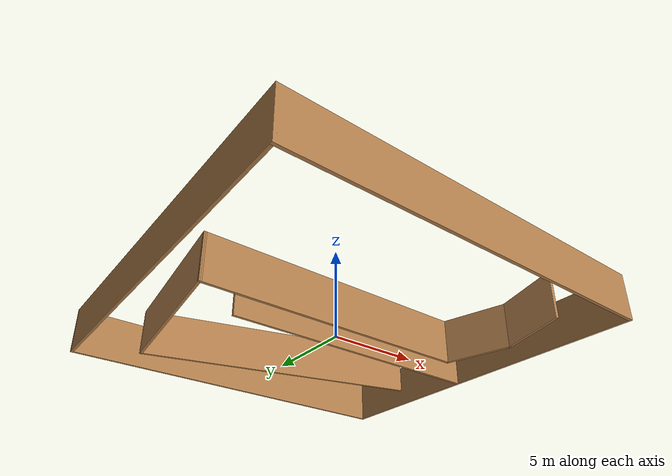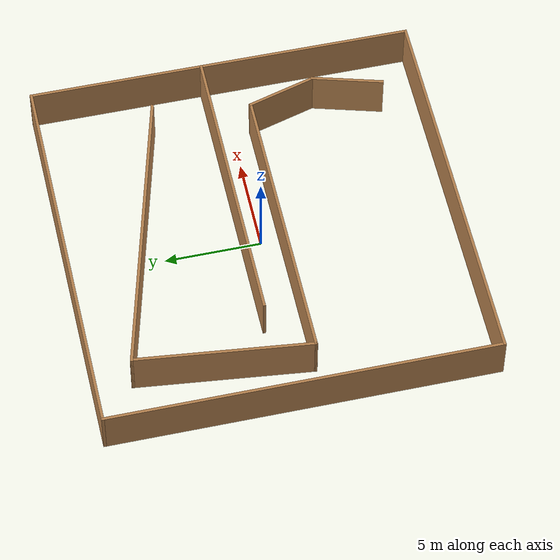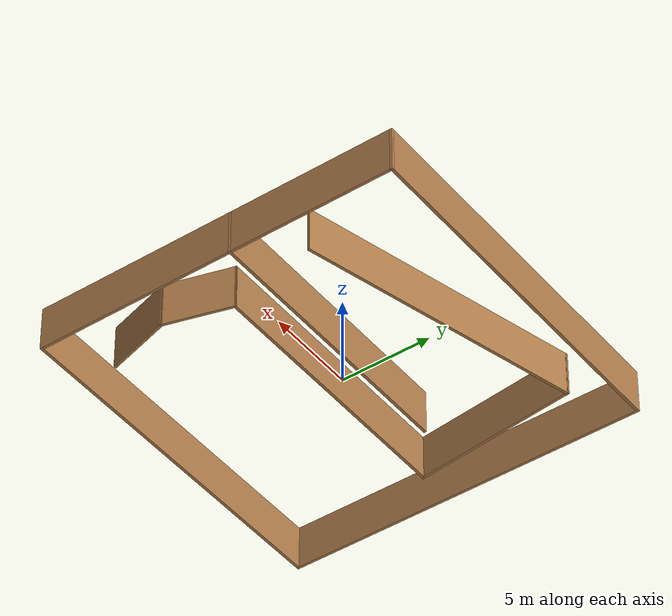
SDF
<?xml version='1.0'?>
<sdf version='1.6'>
  <model name='maze_wall'>
    <pose frame=''>0 0 0 0 -0 0</pose>
    <link name='Wall_0'>
      <collision name='Wall_0_Collision'>
        <geometry>
          <box>
            <size>20.15 0.15 2.5</size>
          </box>
        </geometry>
        <pose frame=''>0 0 1.25 0 -0 0</pose>
      </collision>
      <visual name='Wall_0_Visual'>
        <pose frame=''>0 0 1.25 0 -0 0</pose>
        <geometry>
          <box>
            <size>20.15 0.15 2.5</size>
          </box>
        </geometry>
        <material>
          <script>
            <uri>file://media/materials/scripts/gazebo.material</uri>
            <name>Gazebo/Wood</name>
          </script>
          <ambient>1 1 1 1</ambient>
        </material>
        <meta>
          <layer>0</layer>
        </meta>
      </visual>
      <pose frame=''>0 -10 0 0 -0 0</pose>
    </link>
    <link name='Wall_1'>
      <collision name='Wall_1_Collision'>
        <geometry>
          <box>
            <size>20.15 0.15 2.5</size>
          </box>
        </geometry>
        <pose frame=''>0 0 1.25 0 -0 0</pose>
      </collision>
      <visual name='Wall_1_Visual'>
        <pose frame=''>0 0 1.25 0 -0 0</pose>
        <geometry>
          <box>
            <size>20.15 0.15 2.5</size>
          </box>
        </geometry>
        <material>
          <script>
            <uri>file://media/materials/scripts/gazebo.material</uri>
            <name>Gazebo/Wood</name>
          </script>
          <ambient>1 1 1 1</ambient>
        </material>
        <meta>
          <layer>0</layer>
        </meta>
      </visual>
      <pose frame=''>10 0 0 0 -0 1.5708</pose>
    </link>
    <link name='Wall_11'>
      <collision name='Wall_11_Collision'>
        <geometry>
          <box>
            <size>3.79006 0.15 2.5</size>
          </box>
        </geometry>
        <pose frame=''>0 0 1.25 0 -0 0</pose>
      </collision>
      <visual name='Wall_11_Visual'>
        <pose frame=''>0 0 1.25 0 -0 0</pose>
        <geometry>
          <box>
            <size>3.79006 0.15 2.5</size>
          </box>
        </geometry>
        <material>
          <script>
            <uri>file://media/materials/scripts/gazebo.material</uri>
            <name>Gazebo/Wood</name>
          </script>
          <ambient>1 1 1 1</ambient>
        </material>
        <meta>
          <layer>0</layer>
        </meta>
      </visual>
      <pose frame=''>7.5 -6.25 0 0 -0 -1.8491</pose>
    </link>
    <link name='Wall_14'>
      <collision name='Wall_14_Collision'>
        <geometry>
          <box>
            <size>9.20538 0.15 2.5</size>
          </box>
        </geometry>
        <pose frame=''>0 0 1.25 0 -0 0</pose>
      </collision>
      <visual name='Wall_14_Visual'>
        <pose frame=''>0 0 1.25 0 -0 0</pose>
        <geometry>
          <box>
            <size>9.20538 0.15 2.5</size>
          </box>
        </geometry>
        <material>
          <script>
            <uri>file://media/materials/scripts/gazebo.material</uri>
            <name>Gazebo/Wood</name>
          </script>
          <ambient>1 1 1 1</ambient>
        </material>
        <meta>
          <layer>0</layer>
        </meta>
      </visual>
      <pose frame=''>-7.5 3.5 0 0 -0 1.46014</pose>
    </link>
    <link name='Wall_16'>
      <collision name='Wall_16_Collision'>
        <geometry>
          <box>
            <size>15.6742 0.15 2.5</size>
          </box>
        </geometry>
        <pose frame=''>0 0 1.25 0 -0 0</pose>
      </collision>
      <visual name='Wall_16_Visual'>
        <pose frame=''>0 0 1.25 0 -0 0</pose>
        <geometry>
          <box>
            <size>15.6742 0.15 2.5</size>
          </box>
        </geometry>
        <material>
          <script>
            <uri>file://media/materials/scripts/gazebo.material</uri>
            <name>Gazebo/Wood</name>
          </script>
          <ambient>1 1 1 1</ambient>
        </material>
        <meta>
          <layer>0</layer>
        </meta>
      </visual>
      <pose frame=''>0.5 6 0 0 -0 -0.260602</pose>
    </link>
    <link name='Wall_2'>
      <collision name='Wall_2_Collision'>
        <geometry>
          <box>
            <size>20.15 0.15 2.5</size>
          </box>
        </geometry>
        <pose frame=''>0 0 1.25 0 -0 0</pose>
      </collision>
      <visual name='Wall_2_Visual'>
        <pose frame=''>0 0 1.25 0 -0 0</pose>
        <geometry>
          <box>
            <size>20.15 0.15 2.5</size>
          </box>
        </geometry>
        <material>
          <script>
            <uri>file://media/materials/scripts/gazebo.material</uri>
            <name>Gazebo/Wood</name>
          </script>
          <ambient>1 1 1 1</ambient>
        </material>
        <meta>
          <layer>0</layer>
        </meta>
      </visual>
      <pose frame=''>0 10 0 0 -0 3.14159</pose>
    </link>
    <link name='Wall_3'>
      <collision name='Wall_3_Collision'>
        <geometry>
          <box>
            <size>20.15 0.15 2.5</size>
          </box>
        </geometry>
        <pose frame=''>0 0 1.25 0 -0 0</pose>
      </collision>
      <visual name='Wall_3_Visual'>
        <pose frame=''>0 0 1.25 0 -0 0</pose>
        <geometry>
          <box>
            <size>20.15 0.15 2.5</size>
          </box>
        </geometry>
        <material>
          <script>
            <uri>file://media/materials/scripts/gazebo.material</uri>
            <name>Gazebo/Wood</name>
          </script>
          <ambient>1 1 1 1</ambient>
        </material>
        <meta>
          <layer>0</layer>
        </meta>
      </visual>
      <pose frame=''>-10 0 0 0 -0 -1.5708</pose>
    </link>
    <link name='Wall_6'>
      <collision name='Wall_6_Collision'>
        <geometry>
          <box>
            <size>15.4 0.15 2.5</size>
          </box>
        </geometry>
        <pose frame=''>0 0 1.25 0 -0 0</pose>
      </collision>
      <visual name='Wall_6_Visual'>
        <pose frame=''>0 0 1.25 0 -0 0</pose>
        <geometry>
          <box>
            <size>15.4 0.15 2.5</size>
          </box>
        </geometry>
        <material>
          <script>
            <uri>file://media/materials/scripts/gazebo.material</uri>
            <name>Gazebo/Wood</name>
          </script>
          <ambient>1 1 1 1</ambient>
        </material>
        <meta>
          <layer>0</layer>
        </meta>
      </visual>
      <pose frame=''>2.375 1 0 0 -0 0</pose>
    </link>
    <link name='Wall_8'>
      <collision name='Wall_8_Collision'>
        <geometry>
          <box>
            <size>15.15 0.15 2.5</size>
          </box>
        </geometry>
        <pose frame=''>0 0 1.25 0 -0 0</pose>
      </collision>
      <visual name='Wall_8_Visual'>
        <pose frame=''>0 0 1.25 0 -0 0</pose>
        <geometry>
          <box>
            <size>15.15 0.15 2.5</size>
          </box>
        </geometry>
        <material>
          <script>
            <uri>file://media/materials/scripts/gazebo.material</uri>
            <name>Gazebo/Wood</name>
          </script>
          <ambient>1 1 1 1</ambient>
        </material>
        <meta>
          <layer>0</layer>
        </meta>
      </visual>
      <pose frame=''>-0.5 -1 0 0 -0 0</pose>
    </link>
    <link name='Wall_9'>
      <collision name='Wall_9_Collision'>
        <geometry>
          <box>
            <size>3.79006 0.15 2.5</size>
          </box>
        </geometry>
        <pose frame=''>0 0 1.25 0 -0 0</pose>
      </collision>
      <visual name='Wall_9_Visual'>
        <pose frame=''>0 0 1.25 0 -0 0</pose>
        <geometry>
          <box>
            <size>3.79006 0.15 2.5</size>
          </box>
        </geometry>
        <material>
          <script>
            <uri>file://media/materials/scripts/gazebo.material</uri>
            <name>Gazebo/Wood</name>
          </script>
          <ambient>1 1 1 1</ambient>
        </material>
        <meta>
          <layer>0</layer>
        </meta>
      </visual>
      <pose frame=''>7.5 -2.75 0 0 -0 -1.2925</pose>
    </link>
    <static>1</static>
  </model>
</sdf>
